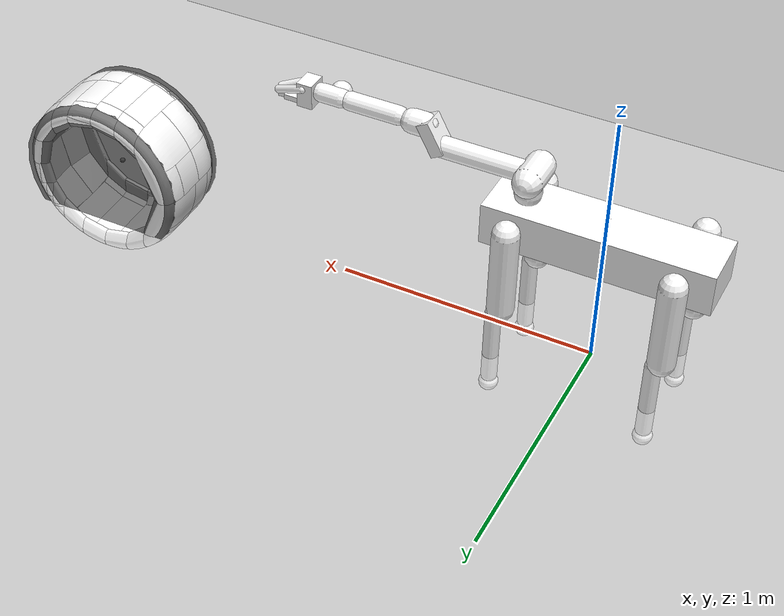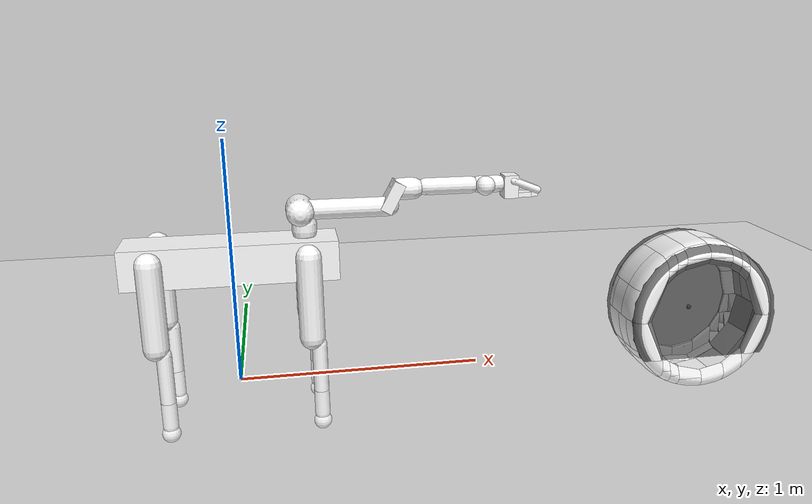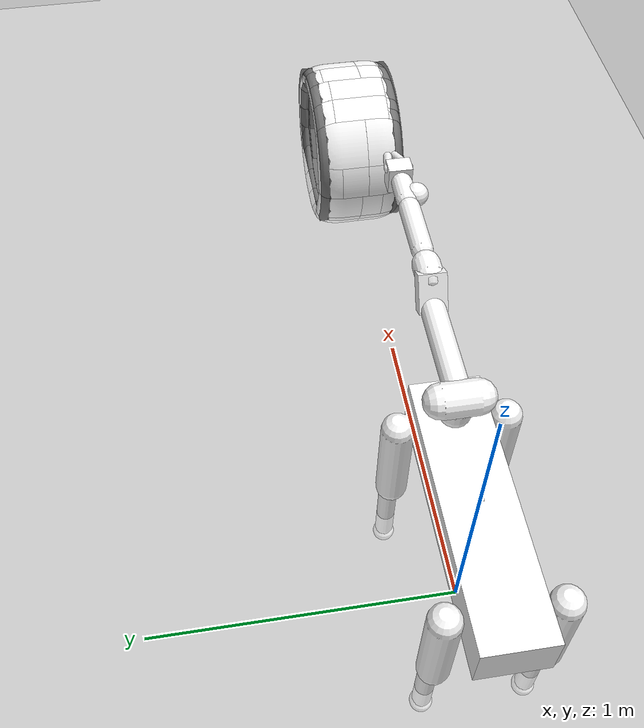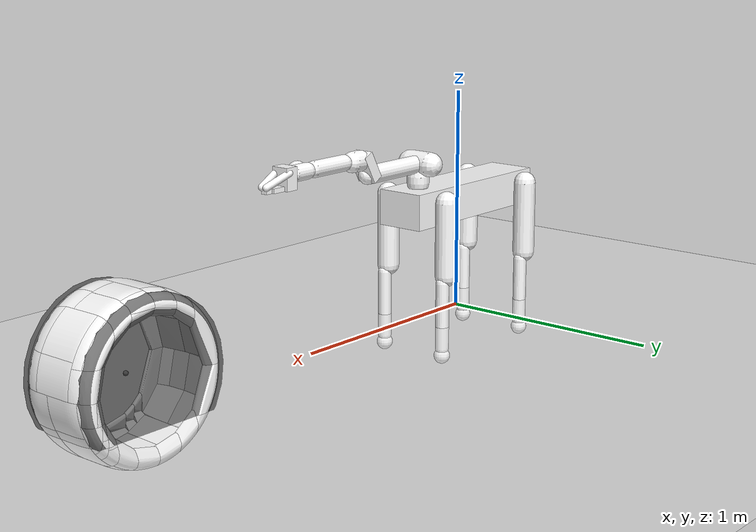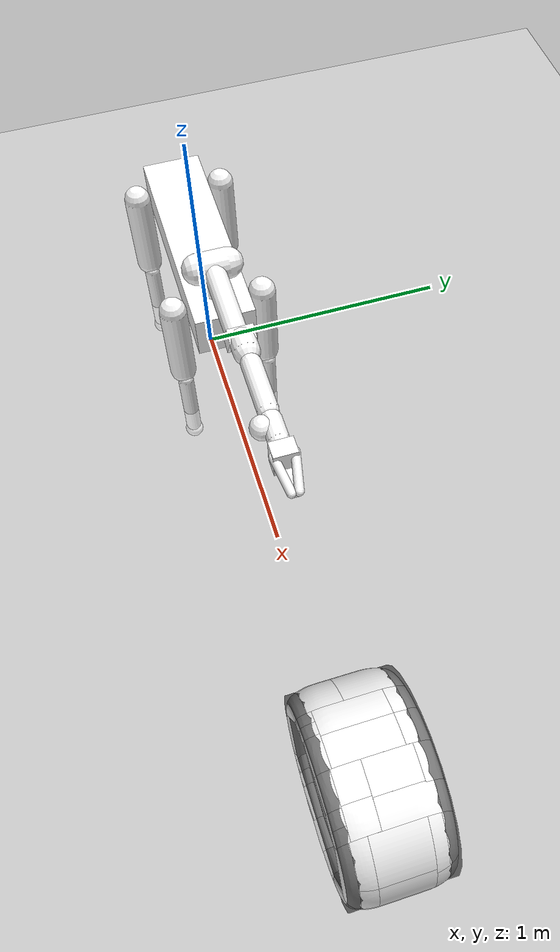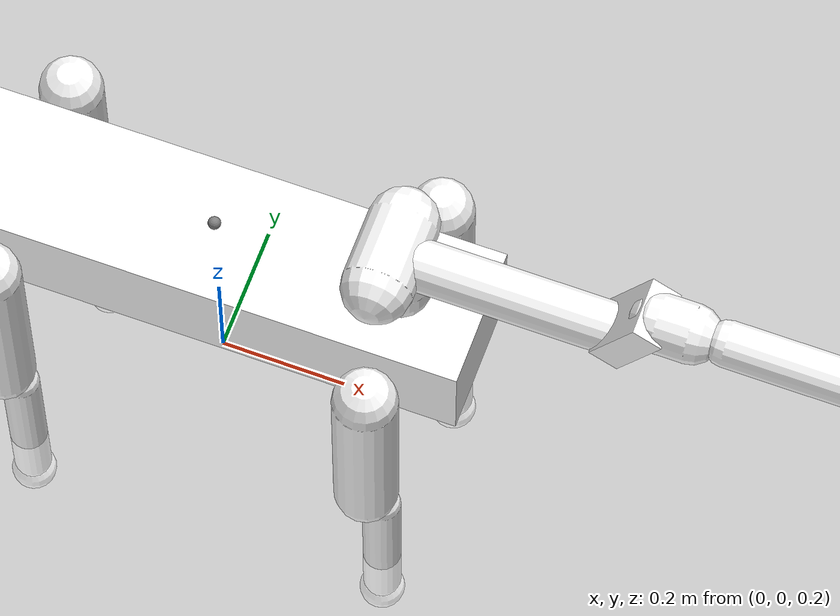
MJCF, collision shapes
<mujoco model="spot_tire">
<!-- Copyright (c) 2025 Robotics and AI Institute LLC. All rights reserved. -->
<!-- Scene: Spot robot with tire object for manipulation tasks -->

  <compiler angle="radian" meshdir="../../meshes/" assetdir="../../meshes/" autolimits="true"/>

  <option timestep="0.01" solver="Newton" integrator="implicitfast" density="1"/>

  <!-- Include default classes (from spot_primitive, but no compiler override) -->
  <default>
    <default class="visual">
      <geom type="mesh" contype="0" conaffinity="0" group="2"/>
    </default>
    <default class="collision">
      <geom group="3" friction="0.15" priority="4" rgba="1 1 1 1"/>
    </default>

    <default class="arm">
      <default class="arm_sh0">
        <joint frictionloss="0.5" damping="0.25" armature="0.17953760" range="-2.61799387799149441136 3.14159265358979311599"/>
        <position kp="120" kv="2.0" ctrlrange="-2.61799387799149441136 3.14159265358979311599" forcerange="-90.9 90.9"/>
      </default>
      <default class="arm_sh1">
        <joint frictionloss="0.5" damping="0.25" armature="0.71815040" range="-3.14159265358979311599 0.52359877559829881565"/>
        <position kp="120" kv="2.0" ctrlrange="-3.14159265358979311599 0.52359877559829881565" forcerange="-181.8 181.8"/>
      </default>
      <default class="arm_el0">
        <joint frictionloss="0.5" damping="0.25" armature="0.17953760" range="0 3.14159265358979311599"/>
        <position kp="120" kv="2.0" ctrlrange="0 3.14159265358979311599" forcerange="-90.9 90.9"/>
      </default>
      <default class="arm_el1">
        <joint frictionloss="0.5" damping="0.25" armature="0.05477937" range="-2.79252680319092716487 2.79252680319092716487"/>
        <position kp="120" kv="2.0" ctrlrange="-2.79252680319092716487 2.79252680319092716487" forcerange="-30.3 30.3"/>
      </default>
      <default class="arm_wr0">
        <joint frictionloss="0.5" damping="0.25" armature="0.05477937" range="-1.83259571459404613236 1.83259571459404613236"/>
        <position kp="120" kv="2.0" ctrlrange="-1.83259571459404613236 1.83259571459404613236" forcerange="-30.3 30.3"/>
      </default>
      <default class="arm_wr1">
        <joint frictionloss="0.5" damping="0.25" armature="0.07997584" range="-2.87979326579064354163 2.87979326579064354163"/>
        <position kp="120" kv="2.0" ctrlrange="-2.87979326579064354163 2.87979326579064354163" forcerange="-30.3 30.3"/>
      </default>
      <default class="arm_f1x">
        <joint frictionloss="0.5" damping="0.25" armature="0.01717273" range="-1.57 0"/>
        <position kp="16.0" kv="0.32" ctrlrange="-1.57 0" forcerange="-15.32 15.32"/>
      </default>
    </default>

    <default class="leg">
      <default class="hip_x">
        <joint frictionloss="0.5" damping="0.25" armature="0.0403155" range="-0.785398 0.785398"/>
        <position kp="60" kv="1.5" ctrlrange="-0.785398 0.785398" forcerange="-45 45"/>
      </default>
      <default class="hip_y">
        <joint frictionloss="0.5" damping="0.25" armature="0.0403155" range="-0.898845 2.29511"/>
        <position kp="60" kv="1.5" ctrlrange="-0.898845 2.29511" forcerange="-45 45"/>
      </default>
      <default class="knee">
        <joint frictionloss="0.5" damping="0.25" armature="0.073125" range="-2.7929 -0.2471"/>
        <position kp="60" kv="1.5" ctrlrange="-2.7929 -0.2471" forcerange="-115 115"/>
      </default>
    </default>

  </default>

  <!-- Spot assets -->
  <include file="../spot_primitive/assets.xml" />

  <!-- Tire defaults and assets (inlined to avoid compiler directive conflict) -->
  <default>
    <default class="tire_visual">
      <geom type="mesh" contype="0" conaffinity="0" group="2"/>
    </default>
    <default class="tire_collision">
      <geom friction="1.15 1.0" priority="6" material="tire_semi_transparent"/>
    </default>
  </default>

  <asset>
    <material name="tire_black" rgba="0.25 0.25 0.25 1" metallic="0.0" roughness="1.0"/>
    <material name="tire_semi_transparent" rgba="1 1 1 0.5" metallic="0.0" roughness="1.0"/>
    <mesh name="tire_visual" file="objects/tire/meshes/visual/tire.obj"/>
    <mesh name="tire_0_collision" file="objects/tire/meshes/collision/part_0.obj"/>
    <mesh name="tire_1_collision" file="objects/tire/meshes/collision/part_1.obj"/>
    <mesh name="tire_2_collision" file="objects/tire/meshes/collision/part_2.obj"/>
    <mesh name="tire_3_collision" file="objects/tire/meshes/collision/part_3.obj"/>
    <mesh name="tire_4_collision" file="objects/tire/meshes/collision/part_4.obj"/>
    <mesh name="tire_5_collision" file="objects/tire/meshes/collision/part_5.obj"/>
    <mesh name="tire_6_collision" file="objects/tire/meshes/collision/part_6.obj"/>
    <mesh name="tire_7_collision" file="objects/tire/meshes/collision/part_7.obj"/>
    <mesh name="tire_8_collision" file="objects/tire/meshes/collision/part_8.obj"/>
    <mesh name="tire_9_collision" file="objects/tire/meshes/collision/part_9.obj"/>
    <mesh name="tire_10_collision" file="objects/tire/meshes/collision/part_10.obj"/>
    <mesh name="tire_11_collision" file="objects/tire/meshes/collision/part_11.obj"/>
    <mesh name="tire_12_collision" file="objects/tire/meshes/collision/part_12.obj"/>
    <mesh name="tire_13_collision" file="objects/tire/meshes/collision/part_13.obj"/>
    <mesh name="tire_14_collision" file="objects/tire/meshes/collision/part_14.obj"/>
    <mesh name="tire_15_collision" file="objects/tire/meshes/collision/part_15.obj"/>
    <mesh name="tire_16_collision" file="objects/tire/meshes/collision/part_16.obj"/>
    <mesh name="tire_17_collision" file="objects/tire/meshes/collision/part_17.obj"/>
    <mesh name="tire_18_collision" file="objects/tire/meshes/collision/part_18.obj"/>
    <mesh name="tire_19_collision" file="objects/tire/meshes/collision/part_19.obj"/>
    <mesh name="tire_20_collision" file="objects/tire/meshes/collision/part_20.obj"/>
    <mesh name="tire_21_collision" file="objects/tire/meshes/collision/part_21.obj"/>
    <mesh name="tire_22_collision" file="objects/tire/meshes/collision/part_22.obj"/>
    <mesh name="tire_23_collision" file="objects/tire/meshes/collision/part_23.obj"/>
    <mesh name="tire_24_collision" file="objects/tire/meshes/collision/part_24.obj"/>
    <mesh name="tire_25_collision" file="objects/tire/meshes/collision/part_25.obj"/>
    <mesh name="tire_26_collision" file="objects/tire/meshes/collision/part_26.obj"/>
    <mesh name="tire_27_collision" file="objects/tire/meshes/collision/part_27.obj"/>
    <mesh name="tire_28_collision" file="objects/tire/meshes/collision/part_28.obj"/>
    <mesh name="tire_29_collision" file="objects/tire/meshes/collision/part_29.obj"/>
    <mesh name="tire_30_collision" file="objects/tire/meshes/collision/part_30.obj"/>
    <mesh name="tire_31_collision" file="objects/tire/meshes/collision/part_31.obj"/>
    <mesh name="tire_32_collision" file="objects/tire/meshes/collision/part_32.obj"/>
    <mesh name="tire_33_collision" file="objects/tire/meshes/collision/part_33.obj"/>
    <mesh name="tire_34_collision" file="objects/tire/meshes/collision/part_34.obj"/>
    <mesh name="tire_35_collision" file="objects/tire/meshes/collision/part_35.obj"/>
    <mesh name="tire_36_collision" file="objects/tire/meshes/collision/part_36.obj"/>
    <mesh name="tire_37_collision" file="objects/tire/meshes/collision/part_37.obj"/>
    <mesh name="tire_38_collision" file="objects/tire/meshes/collision/part_38.obj"/>
    <mesh name="tire_39_collision" file="objects/tire/meshes/collision/part_39.obj"/>
    <mesh name="tire_40_collision" file="objects/tire/meshes/collision/part_40.obj"/>
    <mesh name="tire_41_collision" file="objects/tire/meshes/collision/part_41.obj"/>
    <mesh name="tire_42_collision" file="objects/tire/meshes/collision/part_42.obj"/>
    <mesh name="tire_43_collision" file="objects/tire/meshes/collision/part_43.obj"/>
    <mesh name="tire_44_collision" file="objects/tire/meshes/collision/part_44.obj"/>
    <mesh name="tire_45_collision" file="objects/tire/meshes/collision/part_45.obj"/>
    <mesh name="tire_46_collision" file="objects/tire/meshes/collision/part_46.obj"/>
    <mesh name="tire_47_collision" file="objects/tire/meshes/collision/part_47.obj"/>
    <mesh name="tire_48_collision" file="objects/tire/meshes/collision/part_48.obj"/>
    <mesh name="tire_49_collision" file="objects/tire/meshes/collision/part_49.obj"/>
    <mesh name="tire_50_collision" file="objects/tire/meshes/collision/part_50.obj"/>
    <mesh name="tire_51_collision" file="objects/tire/meshes/collision/part_51.obj"/>
    <mesh name="tire_52_collision" file="objects/tire/meshes/collision/part_52.obj"/>
    <mesh name="tire_53_collision" file="objects/tire/meshes/collision/part_53.obj"/>
    <mesh name="tire_54_collision" file="objects/tire/meshes/collision/part_54.obj"/>
    <mesh name="tire_55_collision" file="objects/tire/meshes/collision/part_55.obj"/>
    <mesh name="tire_56_collision" file="objects/tire/meshes/collision/part_56.obj"/>
    <mesh name="tire_57_collision" file="objects/tire/meshes/collision/part_57.obj"/>
    <mesh name="tire_58_collision" file="objects/tire/meshes/collision/part_58.obj"/>
    <mesh name="tire_59_collision" file="objects/tire/meshes/collision/part_59.obj"/>
    <mesh name="tire_60_collision" file="objects/tire/meshes/collision/part_60.obj"/>
    <mesh name="tire_61_collision" file="objects/tire/meshes/collision/part_61.obj"/>
    <mesh name="tire_62_collision" file="objects/tire/meshes/collision/part_62.obj"/>
    <mesh name="tire_63_collision" file="objects/tire/meshes/collision/part_63.obj"/>
    <mesh name="tire_64_collision" file="objects/tire/meshes/collision/part_64.obj"/>
    <mesh name="tire_65_collision" file="objects/tire/meshes/collision/part_65.obj"/>
    <mesh name="tire_66_collision" file="objects/tire/meshes/collision/part_66.obj"/>
    <mesh name="tire_67_collision" file="objects/tire/meshes/collision/part_67.obj"/>
    <mesh name="tire_68_collision" file="objects/tire/meshes/collision/part_68.obj"/>
    <mesh name="tire_69_collision" file="objects/tire/meshes/collision/part_69.obj"/>
    <mesh name="tire_70_collision" file="objects/tire/meshes/collision/part_70.obj"/>
    <mesh name="tire_71_collision" file="objects/tire/meshes/collision/part_71.obj"/>
    <mesh name="tire_72_collision" file="objects/tire/meshes/collision/part_72.obj"/>
    <mesh name="tire_73_collision" file="objects/tire/meshes/collision/part_73.obj"/>
    <mesh name="tire_74_collision" file="objects/tire/meshes/collision/part_74.obj"/>
    <mesh name="tire_75_collision" file="objects/tire/meshes/collision/part_75.obj"/>
    <mesh name="tire_76_collision" file="objects/tire/meshes/collision/part_76.obj"/>
    <mesh name="tire_77_collision" file="objects/tire/meshes/collision/part_77.obj"/>
    <mesh name="tire_78_collision" file="objects/tire/meshes/collision/part_78.obj"/>
    <mesh name="tire_79_collision" file="objects/tire/meshes/collision/part_79.obj"/>
    <mesh name="tire_80_collision" file="objects/tire/meshes/collision/part_80.obj"/>
  </asset>

  <worldbody>
    <light directional="true" diffuse=".4 .4 .4" specular="0.1 0.1 0.1" pos="0 0 5" dir="0 0 -1" castshadow="false"/>
    <light directional="true" diffuse=".6 .6 .6" specular="0.2 0.2 0.2" pos="0 0 4" dir="0 0 -1"/>

    <geom name="ground" type="plane" size="10 10 0.01" class="collision" priority="5" friction="0.8" material="blue_grid"/>

    <!-- Spot robot body at standing height -->
    <body name="body" pos="0 0 0.52">
      <include file="../spot_primitive/body.xml" />
      <include file="../spot_primitive/legs.xml" />
      <include file="../spot_primitive/arm.xml" />
    </body>

    <!-- Tire object - initially lying flat -->
    <body name="tire_body" pos="2 0 0.175">
      <joint name="tire_rubber_joint" type="free"/>
      <inertial pos="0 0 0" mass="15.3" diaginertia="0.57 0.96 0.57"/>

      <geom name="object_primitive_approx" type="cylinder" class="tire_visual" size="0.33 0.17" quat="1 1 0 0" rgba="0 0 0 0.5"/>
      <geom name="tire_visual" type="mesh" class="tire_visual" mesh="tire_visual" material="tire_black"/>
      <geom name="tire_0_collision" type="mesh" class="tire_collision" mesh="tire_0_collision"/>
      <geom name="tire_1_collision" type="mesh" class="tire_collision" mesh="tire_1_collision"/>
      <geom name="tire_2_collision" type="mesh" class="tire_collision" mesh="tire_2_collision"/>
      <geom name="tire_3_collision" type="mesh" class="tire_collision" mesh="tire_3_collision"/>
      <geom name="tire_4_collision" type="mesh" class="tire_collision" mesh="tire_4_collision"/>
      <geom name="tire_5_collision" type="mesh" class="tire_collision" mesh="tire_5_collision"/>
      <geom name="tire_6_collision" type="mesh" class="tire_collision" mesh="tire_6_collision"/>
      <geom name="tire_7_collision" type="mesh" class="tire_collision" mesh="tire_7_collision"/>
      <geom name="tire_8_collision" type="mesh" class="tire_collision" mesh="tire_8_collision"/>
      <geom name="tire_9_collision" type="mesh" class="tire_collision" mesh="tire_9_collision"/>
      <geom name="tire_10_collision" type="mesh" class="tire_collision" mesh="tire_10_collision"/>
      <geom name="tire_11_collision" type="mesh" class="tire_collision" mesh="tire_11_collision"/>
      <geom name="tire_12_collision" type="mesh" class="tire_collision" mesh="tire_12_collision"/>
      <geom name="tire_13_collision" type="mesh" class="tire_collision" mesh="tire_13_collision"/>
      <geom name="tire_14_collision" type="mesh" class="tire_collision" mesh="tire_14_collision"/>
      <geom name="tire_15_collision" type="mesh" class="tire_collision" mesh="tire_15_collision"/>
      <geom name="tire_16_collision" type="mesh" class="tire_collision" mesh="tire_16_collision"/>
      <geom name="tire_17_collision" type="mesh" class="tire_collision" mesh="tire_17_collision"/>
      <geom name="tire_18_collision" type="mesh" class="tire_collision" mesh="tire_18_collision"/>
      <geom name="tire_19_collision" type="mesh" class="tire_collision" mesh="tire_19_collision"/>
      <geom name="tire_20_collision" type="mesh" class="tire_collision" mesh="tire_20_collision"/>
      <geom name="tire_21_collision" type="mesh" class="tire_collision" mesh="tire_21_collision"/>
      <geom name="tire_22_collision" type="mesh" class="tire_collision" mesh="tire_22_collision"/>
      <geom name="tire_23_collision" type="mesh" class="tire_collision" mesh="tire_23_collision"/>
      <geom name="tire_24_collision" type="mesh" class="tire_collision" mesh="tire_24_collision"/>
      <geom name="tire_25_collision" type="mesh" class="tire_collision" mesh="tire_25_collision"/>
      <geom name="tire_26_collision" type="mesh" class="tire_collision" mesh="tire_26_collision"/>
      <geom name="tire_27_collision" type="mesh" class="tire_collision" mesh="tire_27_collision"/>
      <geom name="tire_28_collision" type="mesh" class="tire_collision" mesh="tire_28_collision"/>
      <geom name="tire_29_collision" type="mesh" class="tire_collision" mesh="tire_29_collision"/>
      <geom name="tire_30_collision" type="mesh" class="tire_collision" mesh="tire_30_collision"/>
      <geom name="tire_31_collision" type="mesh" class="tire_collision" mesh="tire_31_collision"/>
      <geom name="tire_32_collision" type="mesh" class="tire_collision" mesh="tire_32_collision"/>
      <geom name="tire_33_collision" type="mesh" class="tire_collision" mesh="tire_33_collision"/>
      <geom name="tire_34_collision" type="mesh" class="tire_collision" mesh="tire_34_collision"/>
      <geom name="tire_35_collision" type="mesh" class="tire_collision" mesh="tire_35_collision"/>
      <geom name="tire_36_collision" type="mesh" class="tire_collision" mesh="tire_36_collision"/>
      <geom name="tire_37_collision" type="mesh" class="tire_collision" mesh="tire_37_collision"/>
      <geom name="tire_38_collision" type="mesh" class="tire_collision" mesh="tire_38_collision"/>
      <geom name="tire_39_collision" type="mesh" class="tire_collision" mesh="tire_39_collision"/>
      <geom name="tire_40_collision" type="mesh" class="tire_collision" mesh="tire_40_collision"/>
      <geom name="tire_41_collision" type="mesh" class="tire_collision" mesh="tire_41_collision"/>
      <geom name="tire_42_collision" type="mesh" class="tire_collision" mesh="tire_42_collision"/>
      <geom name="tire_43_collision" type="mesh" class="tire_collision" mesh="tire_43_collision"/>
      <geom name="tire_44_collision" type="mesh" class="tire_collision" mesh="tire_44_collision"/>
      <geom name="tire_45_collision" type="mesh" class="tire_collision" mesh="tire_45_collision"/>
      <geom name="tire_46_collision" type="mesh" class="tire_collision" mesh="tire_46_collision"/>
      <geom name="tire_47_collision" type="mesh" class="tire_collision" mesh="tire_47_collision"/>
      <geom name="tire_48_collision" type="mesh" class="tire_collision" mesh="tire_48_collision"/>
      <geom name="tire_49_collision" type="mesh" class="tire_collision" mesh="tire_49_collision"/>
      <geom name="tire_50_collision" type="mesh" class="tire_collision" mesh="tire_50_collision"/>
      <geom name="tire_51_collision" type="mesh" class="tire_collision" mesh="tire_51_collision"/>
      <geom name="tire_52_collision" type="mesh" class="tire_collision" mesh="tire_52_collision"/>
      <geom name="tire_53_collision" type="mesh" class="tire_collision" mesh="tire_53_collision"/>
      <geom name="tire_54_collision" type="mesh" class="tire_collision" mesh="tire_54_collision"/>
      <geom name="tire_55_collision" type="mesh" class="tire_collision" mesh="tire_55_collision"/>
      <geom name="tire_56_collision" type="mesh" class="tire_collision" mesh="tire_56_collision"/>
      <geom name="tire_57_collision" type="mesh" class="tire_collision" mesh="tire_57_collision"/>
      <geom name="tire_58_collision" type="mesh" class="tire_collision" mesh="tire_58_collision"/>
      <geom name="tire_59_collision" type="mesh" class="tire_collision" mesh="tire_59_collision"/>
      <geom name="tire_60_collision" type="mesh" class="tire_collision" mesh="tire_60_collision"/>
      <geom name="tire_61_collision" type="mesh" class="tire_collision" mesh="tire_61_collision"/>
      <geom name="tire_62_collision" type="mesh" class="tire_collision" mesh="tire_62_collision"/>
      <geom name="tire_63_collision" type="mesh" class="tire_collision" mesh="tire_63_collision"/>
      <geom name="tire_64_collision" type="mesh" class="tire_collision" mesh="tire_64_collision"/>
      <geom name="tire_65_collision" type="mesh" class="tire_collision" mesh="tire_65_collision"/>
      <geom name="tire_66_collision" type="mesh" class="tire_collision" mesh="tire_66_collision"/>
      <geom name="tire_67_collision" type="mesh" class="tire_collision" mesh="tire_67_collision"/>
      <geom name="tire_68_collision" type="mesh" class="tire_collision" mesh="tire_68_collision"/>
      <geom name="tire_69_collision" type="mesh" class="tire_collision" mesh="tire_69_collision"/>
      <geom name="tire_70_collision" type="mesh" class="tire_collision" mesh="tire_70_collision"/>
      <geom name="tire_71_collision" type="mesh" class="tire_collision" mesh="tire_71_collision"/>
      <geom name="tire_72_collision" type="mesh" class="tire_collision" mesh="tire_72_collision"/>
      <geom name="tire_73_collision" type="mesh" class="tire_collision" mesh="tire_73_collision"/>
      <geom name="tire_74_collision" type="mesh" class="tire_collision" mesh="tire_74_collision"/>
      <geom name="tire_75_collision" type="mesh" class="tire_collision" mesh="tire_75_collision"/>
      <geom name="tire_76_collision" type="mesh" class="tire_collision" mesh="tire_76_collision"/>
      <geom name="tire_77_collision" type="mesh" class="tire_collision" mesh="tire_77_collision"/>
      <geom name="tire_78_collision" type="mesh" class="tire_collision" mesh="tire_78_collision"/>
      <geom name="tire_79_collision" type="mesh" class="tire_collision" mesh="tire_79_collision"/>
      <geom name="tire_80_collision" type="mesh" class="tire_collision" mesh="tire_80_collision"/>
      <site name="trace_tire" pos="0 0 0" size="0.01"/>
      <site name="site_object" pos="0 0 0" size="0.01"/>
    </body>
  </worldbody>

  <include file="../spot_primitive/actuator.xml" />
  <include file="../spot_primitive/contact.xml" />

  <!-- Sensors for task rewards -->
  <sensor>
    <framepos name="sensor_body" objtype="site" objname="site_body"/>
    <framexaxis name="body_x_axis" objtype="site" objname="site_body"/>
    <framexaxis name="object_x_axis" objtype="site" objname="site_object"/>
    <frameyaxis name="object_y_axis" objtype="site" objname="site_object"/>
    <framezaxis name="object_z_axis" objtype="site" objname="site_object"/>
    <framepos name="trace_fngr_site" objtype="site" objname="site_arm_link_fngr"/>
    <framexaxis name="gripper_x_axis" objtype="site" objname="site_arm_link_wr1"/>
    <frameyaxis name="gripper_y_axis" objtype="site" objname="site_arm_link_wr1"/>
    <framexaxis name="finger_x_axis" objtype="site" objname="site_arm_link_fngr"/>
    <framepos name="fl_pos" objtype="site" objname="site_front_left"/>
    <framepos name="fr_pos" objtype="site" objname="site_front_right"/>
    <framepos name="hl_pos" objtype="site" objname="site_rear_left"/>
    <framepos name="hr_pos" objtype="site" objname="site_rear_right"/>
    <framepos name="sensor_arm_link_sh0" objtype="site" objname="site_arm_link_sh0"/>
    <framepos name="sensor_arm_link_sh1" objtype="site" objname="site_arm_link_sh1"/>
    <framepos name="sensor_arm_link_el0" objtype="site" objname="site_arm_link_el0"/>
    <framepos name="sensor_arm_link_el1" objtype="site" objname="site_arm_link_el1"/>
    <framepos name="sensor_arm_link_wr0" objtype="site" objname="site_arm_link_wr0"/>
    <framepos name="sensor_arm_link_wr1" objtype="site" objname="site_arm_link_wr1"/>
    <framepos name="sensor_arm_link_fngr" objtype="site" objname="site_arm_link_fngr"/>
  </sensor>
</mujoco>

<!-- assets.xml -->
<mujoco model="spot_assets">
<!-- Copyright (c) 2023 Boston Dynamics AI Institute LLC. All rights reserved. -->
  <asset>
    <texture name="blue_grid" type="2d" builtin="checker" rgb1="0.2 0.3 0.4" rgb2="0.1 0.2 0.3" width="300" height="300" mark="edge" markrgb="0.8 0.8 0.8"/>
    <material name="blue_grid" texture="blue_grid" texrepeat="5 5" texuniform="true" reflectance=".2"/>
    <texture name="bdai_texture" type="2d" file="spot/textures/bdaii_spot_wrap.png"/>
    <material name="bdai" texture="bdai_texture" specular="1" shininess="11"/>
    <texture name="chess_texture" type="2d" builtin="checker" width="1024" height="1024" rgb1="1.0 0.27 0.1" rgb2="1.0 0.84 0.0"/>
    <material name="chess_material" texture="chess_texture"/>

    <material name="black" rgba="0.2 0.2 0.2 1" roughness="0.1" metallic="0.3"/>
    <material name="yellow" rgba="1 0.8 0.03 1" roughness="0.1" metallic="0.3"/>
    <material name="semi_transparent" rgba="1 1 1 0.75" metallic="0.0" roughness="1.0"/>
    <material name="object" rgba="0.5 0.5 0.5 1" roughness="0.5"/>

    <mesh name="body_0_visual" file="spot/meshes/base/visual/body_0.obj"/>
    <mesh name="body_1_visual" file="spot/meshes/base/visual/body_1.obj"/>

    <mesh name="front_left_hip_visual" file="spot/meshes/base/visual/front_left_hip.obj"/>
    <mesh name="front_left_lower_leg_visual" file="spot/meshes/base/visual/front_left_lower_leg.obj"/>
    <mesh name="front_left_upper_leg_0_visual" file="spot/meshes/base/visual/front_left_upper_leg_0.obj"/>
    <mesh name="front_left_upper_leg_1_visual" file="spot/meshes/base/visual/front_left_upper_leg_1.obj"/>

    <mesh name="front_right_hip_visual" file="spot/meshes/base/visual/front_right_hip.obj"/>
    <mesh name="front_right_lower_leg_visual" file="spot/meshes/base/visual/front_right_lower_leg.obj"/>
    <mesh name="front_right_upper_leg_0_visual" file="spot/meshes/base/visual/front_right_upper_leg_0.obj"/>
    <mesh name="front_right_upper_leg_1_visual" file="spot/meshes/base/visual/front_right_upper_leg_1.obj"/>

    <mesh name="rear_left_hip_visual" file="spot/meshes/base/visual/rear_left_hip.obj"/>
    <mesh name="rear_left_lower_leg_visual" file="spot/meshes/base/visual/rear_left_lower_leg.obj"/>
    <mesh name="rear_left_upper_leg_0_visual" file="spot/meshes/base/visual/rear_left_upper_leg_0.obj"/>
    <mesh name="rear_left_upper_leg_1_visual" file="spot/meshes/base/visual/rear_left_upper_leg_1.obj"/>

    <mesh name="rear_right_hip_visual" file="spot/meshes/base/visual/rear_right_hip.obj"/>
    <mesh name="rear_right_lower_leg_visual" file="spot/meshes/base/visual/rear_right_lower_leg.obj"/>
    <mesh name="rear_right_upper_leg_0_visual" file="spot/meshes/base/visual/rear_right_upper_leg_0.obj"/>
    <mesh name="rear_right_upper_leg_1_visual" file="spot/meshes/base/visual/rear_right_upper_leg_1.obj"/>

    <mesh name="arm_link_sh0_visual" file="spot/meshes/arm/visual/arm_link_sh0.obj"/>
    <mesh name="arm_link_sh1_0_visual" file="spot/meshes/arm/visual/arm_link_sh1_0.obj"/>
    <mesh name="arm_link_sh1_1_visual" file="spot/meshes/arm/visual/arm_link_sh1_1.obj"/>
    <mesh name="arm_link_el0_visual" file="spot/meshes/arm/visual/arm_link_el0.obj"/>
    <mesh name="arm_link_el1_0_visual" file="spot/meshes/arm/visual/arm_link_el1_0.obj"/>
    <mesh name="arm_link_el1_1_visual" file="spot/meshes/arm/visual/arm_link_el1_1.obj"/>
    <mesh name="arm_link_wr0_0_visual" file="spot/meshes/arm/visual/arm_link_wr0_0.obj"/>
    <mesh name="arm_link_wr0_1_visual" file="spot/meshes/arm/visual/arm_link_wr0_1.obj"/>
    <mesh name="arm_link_wr1_0_visual" file="spot/meshes/arm/visual/arm_link_wr1_0.obj"/>
    <mesh name="arm_link_wr1_1_visual" file="spot/meshes/arm/visual/arm_link_wr1_1.obj"/>
    <mesh name="arm_link_fngr_0_visual" file="spot/meshes/gripper/visual/arm_link_fngr_0.obj"/>
    <mesh name="arm_link_fngr_1_visual" file="spot/meshes/gripper/visual/arm_link_fngr_1.obj"/>
  </asset>
</mujoco>

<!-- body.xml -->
<mujoco model="spot_body">
<!-- Copyright (c) 2025 Boston Dynamics AI Institute LLC. All rights reserved. -->
    <joint name="base" type="free"/>
    <inertial mass="16.70765207" pos="0 0 -0.00496172" fullinertia="0.081543792 0.549231154 0.569454373 0 0 0"/>
    <geom name="body_0_visual" class="visual" mesh="body_0_visual" material="black"/>
    <geom name="body_1_visual" class="visual" mesh="body_1_visual" material="yellow"/>
    <geom name="body_collision" class="collision" type="box" size="0.42 0.11 0.08"/>
    <site name="site_body" pos="0 0 0.1" size="0.01"/>
</mujoco>

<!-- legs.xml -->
<mujoco model="spot_legs">
<!-- Copyright (c) 2023 Boston Dynamics AI Institute LLC. All rights reserved. -->
    <body name="front_left_hip" pos="0.29785 0.055 0">
        <inertial pos="-0.01586739 0.00855842 0.00000903" mass="1.13688339" fullinertia="0.00122166 0.00158957 0.00172903 -0.00017754 0.00000043 -0.00000049"/>
        <joint name="fl_hx" class="hip_x" pos="0 0 0" axis="1 0 0" range="-0.785398 0.785398"/>
        <geom name="front_left_hip_visual" class="visual" mesh="front_left_hip_visual" material="black"/>
        <body name="front_left_upper_leg" pos="0 0.110945 0">
            <inertial pos="0.00214442 -0.01110184 -0.07881204" mass="2.25620359" fullinertia="0.02692501 0.02583907 0.00318737 -0.00008782 0.00054873 0.00207146"/>
            <joint name="fl_hy" class="hip_y" pos="0 0 0" axis="0 1 0" range="-0.898845 2.295108"/>
            <geom name="front_left_upper_leg_0_visual" class="visual" mesh="front_left_upper_leg_0_visual" material="yellow"/>
            <geom name="front_left_upper_leg_1_visual" class="visual" mesh="front_left_upper_leg_1_visual" material="black"/>
            <geom name="front_left_upper_leg_collision" class="collision" type="capsule" size="0.05 0.165" pos="0 0 -0.13"/>
            <body name="front_left_lower_leg" pos="0.025 0 -0.3205">
                <inertial pos="0.00597360 0.0 -0.17466427" mass="0.33" fullinertia="0.00701356 0.00709946 0.00014529 0 0.00006600 0"/>
                <joint name="fl_kn" class="knee" pos="0 0 0" axis="0 1 0" range="-2.7929 -0.2471"/>
                <geom name="front_left_lower_leg_visual" class="visual" mesh="front_left_lower_leg_visual" material="black"/>
                <geom name="front_left_lower_leg_collision" class="collision" type="capsule" size="0.03 0.15" pos="0 0 -0.155"/>
                <geom name="front_left_foot_collision" class="collision" type="sphere" size="0.036" pos="0 0 -0.3365"/>
                <site name="site_front_left" pos="0 0 -0.3365" size="0.01"/>
            </body>
        </body>
    </body>

    <body name="front_right_hip" pos="0.29785 -0.055 0">
        <inertial pos="-0.01586739 -0.00855842 0.00000903" mass="1.13688339" fullinertia="0.00122166 0.00158957 0.00172903 0.00017754 0.00000043 0.00000049"/>
        <joint name="fr_hx" class="hip_x" pos="0 0 0" axis="1 0 0" range="-0.785398 0.785398"/>
        <geom name="front_right_hip_visual" class="visual" mesh="front_right_hip_visual" material="black"/>
        <body name="front_right_upper_leg" pos="0 -0.110945 0">
            <inertial pos="0.00214442 0.01110184 -0.07881204" mass="2.25620359" fullinertia="0.02692501 0.02583907 0.00318737 0.00008782 0.00054873 -0.00207146"/>
            <joint name="fr_hy" class="hip_y" pos="0 0 0" axis="0 1 0" range="-0.898845 2.295108"/>
            <geom name="front_right_upper_leg_0_visual" class="visual" mesh="front_right_upper_leg_0_visual" material="yellow"/>
            <geom name="front_right_upper_leg_1_visual" class="visual" mesh="front_right_upper_leg_1_visual" material="black"/>
            <geom name="front_right_upper_leg_collision" class="collision" type="capsule" size="0.05 0.165" pos="0 0 -0.13"/>
            <body name="front_right_lower_leg" pos="0.025 0 -0.3205">
                <inertial pos="0.00597360 0.0 -0.17466427" mass="0.33" fullinertia="0.00701356 0.00709946 0.00014529 0 0.00006600 0"/>
                <joint name="fr_kn" class="knee" pos="0 0 0" axis="0 1 0" range="-2.7929 -0.2471"/>
                <geom name="front_right_lower_leg_visual" class="visual" mesh="front_right_lower_leg_visual" material="black"/>
                <geom name="front_right_lower_leg_collision" class="collision" type="capsule" size="0.03 0.15" pos="0 0 -0.155"/>
                <geom name="front_right_foot_collision" class="collision" type="sphere" size="0.036" pos="0 0 -0.3365"/>
                <site name="site_front_right" pos="0 0 -0.3365" size="0.01"/>
            </body>
        </body>
    </body>

    <body name="rear_left_hip" pos="-0.29785 0.055 0">
        <inertial pos="0.01586739 0.00855842 0.00000903" mass="1.13688339" fullinertia="0.00122166 0.00158957 0.00172903 0.00017754 -0.00000043 -0.00000049"/>
        <joint name="hl_hx" class="hip_x" pos="0 0 0" axis="1 0 0" range="-0.785398 0.785398"/>
        <geom name="rear_left_hip_visual" class="visual" mesh="rear_left_hip_visual" material="black"/>
        <body name="rear_left_upper_leg" pos="0 0.110945 0">
            <inertial pos="0.00214442 -0.01110184 -0.07881204" mass="2.25620359" fullinertia="0.02692501 0.02583907 0.00318737 -0.00008782 0.00054873 0.00207146"/>
            <joint name="hl_hy" class="hip_y" pos="0 0 0" axis="0 1 0" range="-0.898845 2.295108"/>
            <geom name="rear_left_upper_leg_0_visual" class="visual" mesh="rear_left_upper_leg_0_visual" material="yellow"/>
            <geom name="rear_left_upper_leg_1_visual" class="visual" mesh="rear_left_upper_leg_1_visual" material="black"/>
            <geom name="rear_left_upper_leg_collision" class="collision" type="capsule" size="0.05 0.165" pos="0 0 -0.13"/>
            <body name="rear_left_lower_leg" pos="0.025 0 -0.3205">
                <inertial pos="0.00597360 0.0 -0.17466427" mass="0.33" fullinertia="0.00701356 0.00709946 0.00014529 0 0.00006600 0"/>
                <joint name="hl_kn" class="knee" pos="0 0 0" axis="0 1 0" range="-2.7929 -0.2471"/>
                <geom name="rear_left_lower_leg_visual" class="visual" mesh="rear_left_lower_leg_visual" material="black"/>
                <geom name="rear_left_lower_leg_collision" class="collision" type="capsule" size="0.03 0.15" pos="0 0 -0.155"/>
                <geom name="rear_left_foot_collision" class="collision" type="sphere" size="0.036" pos="0 0 -0.3365"/>
                <site name="site_rear_left" pos="0 0 -0.3365" size="0.01"/>
            </body>
        </body>
    </body>

    <body name="rear_right_hip" pos="-0.29785 -0.055 0">
        <inertial pos="0.01586739 -0.00855842 0.00000903" mass="1.13688339" fullinertia="0.00122166 0.00158957 0.00172903 -0.00017754 -0.00000043 0.00000049"/>
        <joint name="hr_hx" class="hip_x" pos="0 0 0" axis="1 0 0" range="-0.785398 0.785398"/>
        <geom name="rear_right_hip_visual" class="visual" mesh="rear_right_hip_visual" material="black"/>
        <body name="rear_right_upper_leg" pos="0 -0.110945 0">
            <inertial pos="0.00214442 0.01110184 -0.07881204" mass="2.25620359" fullinertia="0.02692501 0.02583907 0.00318737 0.00008782 0.00054873 -0.00207146"/>
            <joint name="hr_hy" class="hip_y" pos="0 0 0" axis="0 1 0" range="-0.898845 2.295108"/>
            <geom name="rear_right_upper_leg_0_visual" class="visual" mesh="rear_right_upper_leg_0_visual" material="yellow"/>
            <geom name="rear_right_upper_leg_1_visual" class="visual" mesh="rear_right_upper_leg_1_visual" material="black"/>
            <geom name="rear_right_upper_leg_collision" class="collision" type="capsule" size="0.05 0.165" pos="0 0 -0.13"/>
            <body name="rear_right_lower_leg" pos="0.025 0 -0.3205">
                <inertial pos="0.00597360 0.0 -0.17466427" mass="0.33" fullinertia="0.00701356 0.00709946 0.00014529 0 0.00006600 0"/>
                <joint name="hr_kn" class="knee" pos="0 0 0" axis="0 1 0" range="-2.7929 -0.2471"/>
                <geom name="rear_right_lower_leg_visual" class="visual" mesh="rear_right_lower_leg_visual" material="black"/>
                <geom name="rear_right_lower_leg_collision" class="collision" type="capsule" size="0.03 0.15" pos="0 0 -0.155"/>
                <geom name="rear_right_foot_collision" class="collision" type="sphere" size="0.036" pos="0 0 -0.3365"/>
                <site name="site_rear_right" pos="0 0 -0.3365" size="0.01"/>
            </body>
        </body>
    </body>
</mujoco>

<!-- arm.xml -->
<mujoco model="spot_arm">
<!-- Copyright (c) 2023 Boston Dynamics AI Institute LLC. All rights reserved. -->
<!-- fullinertia="M(1,1), M(2,2), M(3,3), M(1,2), M(1,3), M(2,3)" -->
  <body name="arm_link_sh0" pos="0.292 0 0.188" gravcomp="0">
    <joint name="arm_sh0" class="arm_sh0" type="hinge" axis="0 0 1" pos="0 0 0"/>
    <inertial mass="1.904699" fullinertia="0.008896 0.004922 0.0073030 0.000005 -0.000193 0.000033" pos="-0.008399 0.000272 -0.024603"/>
    <geom name="arm_link_sh0_visual" class="visual" mesh="arm_link_sh0_visual" material="black"/>
    <geom name="arm_link_sh0_base_collision" class="collision" type="capsule" size="0.05 0.015" pos="0 0 -0.07"/>
    <geom name="arm_link_sh0_motor_collision" class="collision" type="capsule" size="0.055 0.055" pos="-0.015 0 0" euler="1.57079632679 0 0"/>
    <site name="site_arm_link_sh0" pos="0 0 0" size="0.01"/>

    <body name="arm_link_sh1" pos="0 0 0" gravcomp="0">
      <joint name="arm_sh1" class="arm_sh1" type="hinge" axis="0 1 0" pos="0 0 0"/>
      <inertial mass="1.85701942" fullinertia="0.00261526 0.02703868 0.02819929 -0.00040406 0.00010019 0.00000547" pos="0.08084909 -0.00167243 0.00045644" />
      <geom name="arm_link_sh1_0_visual" class="visual" mesh="arm_link_sh1_0_visual" material="yellow"/>
      <geom name="arm_link_sh1_1_visual" class="visual" mesh="arm_link_sh1_1_visual" material="black"/>
      <geom name="arm_link_sh1_collision" class="collision" type="capsule" size="0.04 0.175" pos="0.17 0 0" euler="0 1.57079632679 0"/>
      <site name="site_arm_link_sh1" pos="0 0 0" size="0.01"/>

      <body name="arm_link_el0" pos="0.3385 0 0" gravcomp="0">
        <joint name="arm_el0" class="arm_el0" type="hinge" axis="0 1 0" pos="0 0 0"/>
        <inertial mass="0.94831958" fullinertia="0.00175909 0.00269233 0.00202854 0.00006087  0.00092380 0.00005217" pos="0.04476621 -0.00271130 0.04991363" />
        <geom name="arm_link_el0_visual" class="visual" mesh="arm_link_el0_visual" material="black"/>
        <geom name="arm_link_el0_joint_collision" class="collision" type="box" size="0.025 0.045 0.065" pos="0.02 0 0.04" euler= "0 0.5 0"/>
        <geom name="arm_link_el0_body_collision" class="collision" type="capsule" size="0.045 0.025" pos="0.08 0 0.07" euler="0 1.57079632679 0"/>
        <site name="site_arm_link_el0" pos="0 0 0" size="0.01"/>

        <body name="arm_link_el1" pos="0.4033 0 0.075" gravcomp="0">
          <joint name="arm_el1" class="arm_el1" type="hinge" axis="1 0 0" pos="0 0 0"/>
          <inertial mass="1.01754820" fullinertia="0.00117710 0.01649389 0.01689901 -0.00260549 0.00000156 -0.00000287" pos="-0.16867073 -0.01616121 0.00001149" />
          <geom name="arm_link_el1_0_visual" class="visual" mesh="arm_link_el1_0_visual" material="yellow"/>
          <geom name="arm_link_el1_1_visual" class="visual" mesh="arm_link_el1_1_visual" material="black"/>
          <geom name="arm_link_el1_main_collision" type="capsule" class="collision" size="0.035 0.095" pos="-0.15 0 0" euler="0 1.57079632679 0"/>
          <geom name="arm_link_el1_lip_collision" type="sphere" class="collision" size="0.04" pos="0 -0.035 0"/>
          <site name="site_arm_link_el1" pos="0 0 0" size="0.01"/>

          <body name="arm_link_wr0" pos="0 0 0" gravcomp="0">
            <joint name="arm_wr0" class="arm_wr0" type="hinge" axis="0 1 0" pos="0 0 0"/>
            <inertial mass="0.58263740" fullinertia="0.00046738 0.00044968 0.00053616 0.00006957 0.00000040 0.00000016" pos="0.00952465 -0.01144406 0.00000186" />
            <geom name="arm_link_wr0_0_visual" class="visual" mesh="arm_link_wr0_0_visual" material="yellow"/>
            <geom name="arm_link_wr0_1_visual" class="visual" mesh="arm_link_wr0_1_visual" material="black"/>
            <geom name="arm_link_wr0_collision" class="collision" type="capsule" size="0.035 0.04" pos="0.02 0 0" euler="0 1.57079632679 0"/>
            <site name="site_arm_link_wr0" pos="0 0 0" size="0.01"/>

            <body name="arm_link_wr1" pos="0 0 0" gravcomp="0">
              <joint name="arm_wr1" class="arm_wr1" type="hinge" axis="1 0 0" pos="0 0 0"/>
              <inertial mass="0.93335298" fullinertia="0.00098836 0.00197018 0.00165791 -0.00000126 -0.00036919 -0.00000074" pos="0.09751283 0.00009265 -0.01120523" />
              <geom name="arm_link_wr1_0_visual" class="visual" mesh="arm_link_wr1_0_visual" material="yellow"/>
              <geom name="arm_link_wr1_1_visual" class="visual" mesh="arm_link_wr1_1_visual" material="black"/>
              <geom name="arm_link_wr1_collision" class="collision" type="box" size="0.03 0.04 0.0475" pos="0.11 0 -0.01" />
              <geom name="bottom_jaw_collision" class="collision" type="box" size="0.03 0.025 0.01" pos="0.17 0 -0.0475" />
              <geom name="front_jaw_collision" class="collision" type="box" size="0.016 0.015 0.01" pos="0.215 0 -0.0475" />
              <geom name="front_jaw_tooth_collision" class="collision" type="box" size="0.005 0.01 0.005" pos="0.224 0 -0.039" euler="0 1 0"/>
              <site name="site_arm_link_wr1" pos="0 0 0" size="0.01"/>

              <body name="arm_link_fngr" pos="0.11745 0.0 0.014820" gravcomp="0">
                <joint name="arm_f1x" class="arm_f1x" type="hinge" axis="0 1 0" pos="0 0 0"/>
                <inertial mass="0.22383315" fullinertia="0.00025226 0.00048453 0.00059145 -0.00000536 -0.00015067 0.00000184" pos="0.03565178 0.00067200 -0.01227516" />
                <geom name="arm_link_fngr_0_visual" class="visual" mesh="arm_link_fngr_0_visual" material="yellow"/>
                <geom name="arm_link_fngr_1_visual" class="visual" mesh="arm_link_fngr_1_visual" material="black"/>
                <geom name="left_jaw_collision" type="capsule" class="collision" size="0.015 0.06" pos="0.057 0.023 -0.023" euler="-0.45 2.0 0"/>
                <geom name="right_jaw_collision" type="capsule" class="collision" size="0.015 0.06" pos="0.057 -0.023 -0.023" euler="0.45 2.0 0"/>
                <site name="site_arm_link_fngr" pos="0 0 0" size="0.01"/>
              </body>
            </body>
          </body>
        </body>
      </body>
    </body>
  </body>
</mujoco>

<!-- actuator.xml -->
<mujoco model="actuator">
<!-- Copyright (c) 2023 Boston Dynamics AI Institute LLC. All rights reserved. -->
  <actuator>
    <position name="act_fl1" joint="fl_hx" class="hip_x"/>
    <position name="act_fl2" joint="fl_hy" class="hip_y"/>
    <position name="act_fl3" joint="fl_kn" class="knee"/>
    <position name="act_fr1" joint="fr_hx" class="hip_x"/>
    <position name="act_fr2" joint="fr_hy" class="hip_y"/>
    <position name="act_fr3" joint="fr_kn" class="knee"/>
    <position name="act_rl1" joint="hl_hx" class="hip_x"/>
    <position name="act_rl2" joint="hl_hy" class="hip_y"/>
    <position name="act_rl3" joint="hl_kn" class="knee"/>
    <position name="act_rr1" joint="hr_hx" class="hip_x"/>
    <position name="act_rr2" joint="hr_hy" class="hip_y"/>
    <position name="act_rr3" joint="hr_kn" class="knee"/>

    <position name="act_0" joint="arm_sh0" class="arm_sh0"/>
    <position name="act_1" joint="arm_sh1" class="arm_sh1"/>
    <position name="act_2" joint="arm_el0" class="arm_el0"/>
    <position name="act_3" joint="arm_el1" class="arm_el1"/>
    <position name="act_4" joint="arm_wr0" class="arm_wr0"/>
    <position name="act_5" joint="arm_wr1" class="arm_wr1"/>
    <position name="act_6" joint="arm_f1x" class="arm_f1x"/>
  </actuator>
</mujoco>

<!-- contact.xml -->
<mujoco model="spot_contact">
<!-- Copyright (c) 2024 Boston Dynamics AI Institute LLC. All rights reserved. -->
  <contact>
    <exclude body1="arm_link_sh0" body2="arm_link_el1"/>
    <exclude body1="arm_link_sh1" body2="arm_link_el0"/>
    <exclude body1="arm_link_sh1" body2="arm_link_el1"/>
    <exclude body1="body" body2="front_left_upper_leg"/>
    <exclude body1="body" body2="front_right_upper_leg"/>
    <exclude body1="body" body2="rear_left_upper_leg"/>
    <exclude body1="body" body2="rear_right_upper_leg"/>
    <exclude body1="arm_link_sh0" body2="front_left_upper_leg"/>
    <exclude body1="arm_link_sh0" body2="front_right_upper_leg"/>
    <exclude body1="arm_link_sh0" body2="rear_left_upper_leg"/>
    <exclude body1="arm_link_sh0" body2="rear_right_upper_leg"/>
  </contact>
</mujoco>
